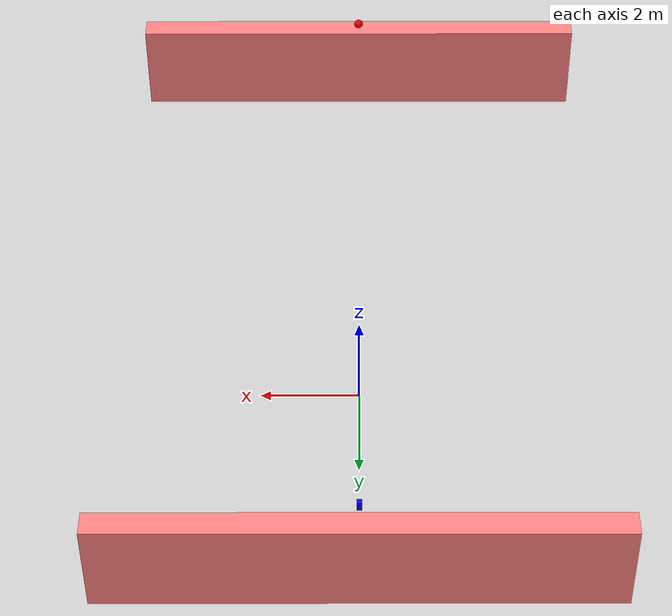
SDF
<sdf version='1.7'>
  <world name='dynamic_ball_world'>
    <plugin name='gazebo_ros_init' filename='libgazebo_ros_init.so'/>
    <plugin name='gazebo_ros_factory' filename='libgazebo_ros_factory.so'/>
    <plugin name='gazebo_ros_state' filename='libgazebo_ros_state.so'>
      <publish_model_states>1</publish_model_states>
      <publish_link_states>1</publish_link_states>
    </plugin>

    <!-- Sunlight -->
    <light name='sun' type='directional'>
      <cast_shadows>1</cast_shadows>
      <pose>0 0 10 0 -0 0</pose>
      <diffuse>0.8 0.8 0.8 1</diffuse>
      <specular>0.2 0.2 0.2 1</specular>
      <attenuation>
        <range>1000</range>
        <constant>0.9</constant>
        <linear>0.01</linear>
        <quadratic>0.001</quadratic>
      </attenuation>
      <direction>-0.5 0.1 -0.9</direction>
    </light>

    <!-- Ground plane -->
    <model name='ground_plane'>
      <static>1</static>
      <link name='link'>
        <collision name='collision'>
          <geometry>
            <plane>
              <normal>0 0 1</normal>
              <size>100 100</size>
            </plane>
          </geometry>
          <surface>
            <friction>
              <ode>
                <mu>100</mu>
                <mu2>50</mu2>
              </ode>
            </friction>
          </surface>
          <max_contacts>10</max_contacts>
        </collision>
        <visual name='visual'>
          <geometry>
            <plane>
              <normal>0 0 1</normal>
              <size>100 100</size>
            </plane>
          </geometry>
          <material>
            <script>
              <uri>file://media/materials/scripts/gazebo.material</uri>
              <name>Gazebo/Grey</name>
            </script>
          </material>
        </visual>
      </link>
    </model>

    <!-- First wall (with the ball on top) -->
    <model name='wall_with_ball'>
      <static>1</static>
      <pose>0 -10 1 0 0 0</pose>
      <link name='link'>
        <collision name='collision'>
          <geometry>
            <box>
              <size>10 0.5 2</size>
            </box>
          </geometry>
        </collision>
        <visual name='visual'>
          <geometry>
            <box>
              <size>10 0.5 2</size>
            </box>
          </geometry>
          <material>
            <ambient>1 0.5 0.5 1</ambient>
          </material>
        </visual>
      </link>
    </model>

    <!-- Ball sitting on the first wall -->
    <model name='ball'>
      <pose>0 -10 2.1 0 0 0</pose> <!-- Positioned on top of the first wall -->
      <link name='link'>
        <visual name='visual'>
          <geometry>
            <sphere>
              <radius>0.1</radius>
            </sphere>
          </geometry>
          <material>
            <ambient>1 0 0 1</ambient>
          </material>
        </visual>
        <collision name='collision'>
          <geometry>
            <sphere>
              <radius>0.1</radius>
            </sphere>
          </geometry>
          <surface>
            <friction>
              <ode>
                <mu>0.5</mu>
                <mu2>0.5</mu2>
              </ode>
            </friction>
          </surface>
        </collision>
        <inertial>
          <mass>10</mass>
          <inertia>
            <ixx>1</ixx>
            <iyy>1</iyy>
            <izz>1</izz>
          </inertia>
        </inertial>
      </link>
    </model>

    <!-- Second wall (with the camera mounted) -->
    <model name='wall_with_camera'>
      <static>1</static>
      <pose>0 5 1 0 0 0</pose> <!-- Placed opposite the first wall -->
      <link name='link'>
        <collision name='collision'>
          <geometry>
            <box>
              <size>10 0.5 2</size>
            </box>
          </geometry>
        </collision>
        <visual name='visual'>
          <geometry>
            <box>
              <size>10 0.5 2</size>
            </box>
          </geometry>
          <material>
            <ambient>1 0.5 0.5 1</ambient>
          </material>
        </visual>
      </link>
    </model>

    <!-- Camera mounted on the second wall -->
    <model name='camera1'>
      <static>1</static>
      <pose>0 5 2.5 0 0 -1.57</pose> <!-- Facing the first wall -->
      <link name='camera_link'>
        <visual name='camera_visual'>
          <geometry>
            <box>
              <size>0.1 0.1 0.2</size>
            </box>
          </geometry>
          <material>
            <ambient>0 0 1 1</ambient>
          </material>
        </visual>
        <sensor name='camera_sensor' type='camera'>
          <camera>
            <horizontal_fov>1.39626</horizontal_fov>
            <image>
              <width>800</width>
              <height>600</height>
              <format>R8G8B8</format>
            </image>
            <clip>
              <near>0.1</near>
              <far>100</far>
            </clip>
          </camera>
          <always_on>1</always_on>
          <update_rate>30</update_rate>
          <visualize>1</visualize>
          <plugin name='camera_controller1' filename='libgazebo_ros_camera.so'>
            <ros>
              <namespace>/camera1</namespace>
              <argument>node_name:=camera1_controller</argument>
            </ros>
            <remapping>image_raw:=/camera1/image_raw</remapping>
          </plugin>
        </sensor>
      </link>
    </model>

    <gravity>0 0 -9.8</gravity>
    <magnetic_field>6e-06 2.3e-05 -4.2e-05</magnetic_field>
    <atmosphere type='adiabatic'/>
    <physics type='ode'>
      <max_step_size>0.01</max_step_size>
      <real_time_factor>1</real_time_factor>
      <real_time_update_rate>1000</real_time_update_rate>
    </physics>
    <scene>
      <ambient>0.4 0.4 0.4 1</ambient>
      <background>0.7 0.7 0.7 1</background>
      <shadows>1</shadows>
    </scene>
    <audio>
      <device>default</device>
    </audio>
    <wind/>
    <spherical_coordinates>
      <surface_model>EARTH_WGS84</surface_model>
      <latitude_deg>0</latitude_deg>
      <longitude_deg>0</longitude_deg>
      <elevation>0</elevation>
      <heading_deg>0</heading_deg>
    </spherical_coordinates>

    <!-- GUI Settings -->
    <gui fullscreen='0'>
      <camera name='user_camera'>
        <pose>-7.1414 -5.04043 4.5925 0 0.547641 0.525028</pose>
        <view_controller>orbit</view_controller>
        <projection_type>perspective</projection_type>
      </camera>
    </gui>
  </world>
</sdf>
